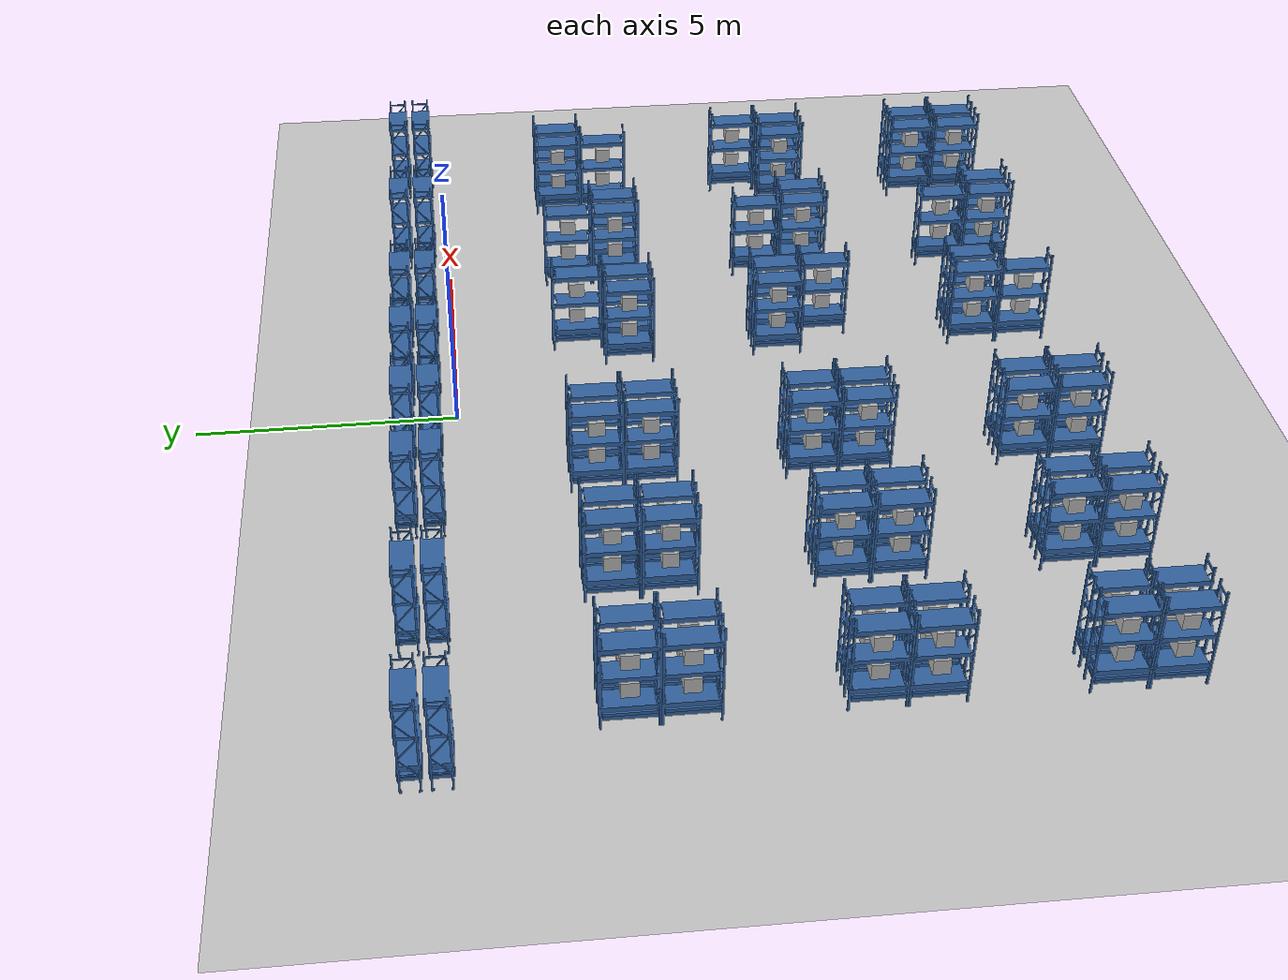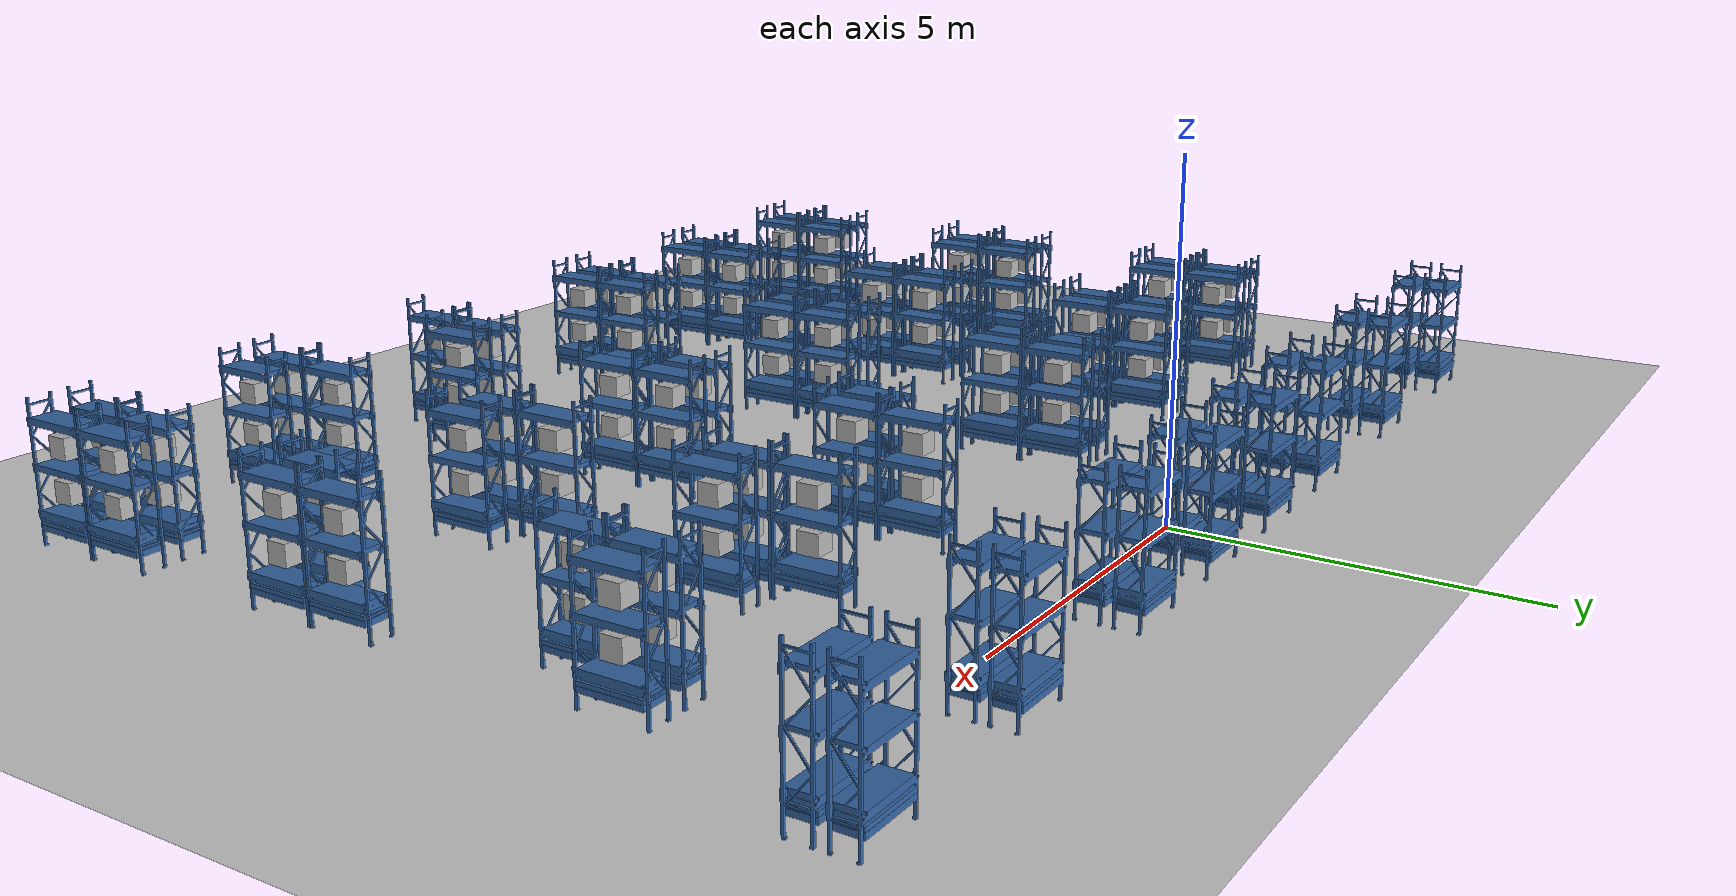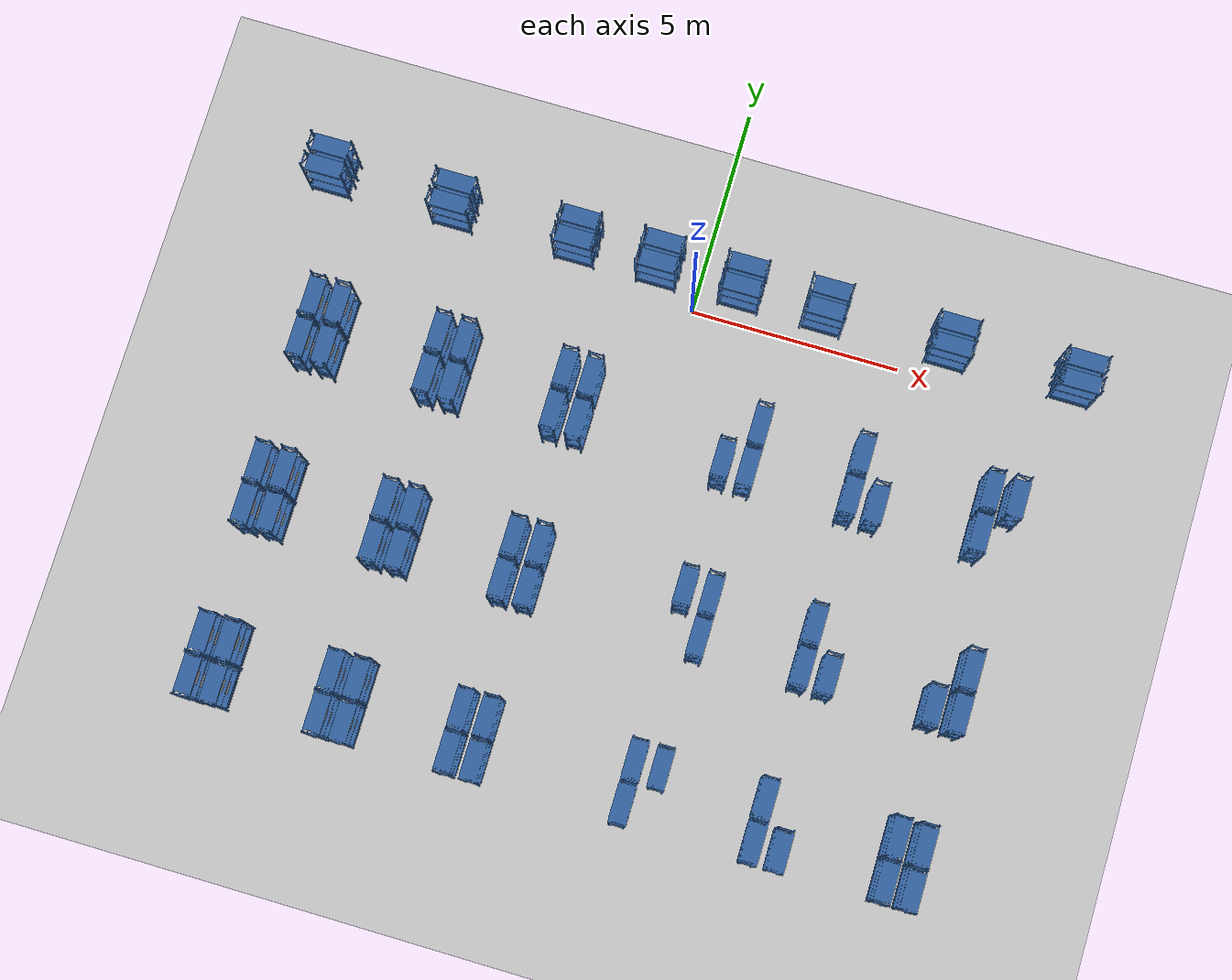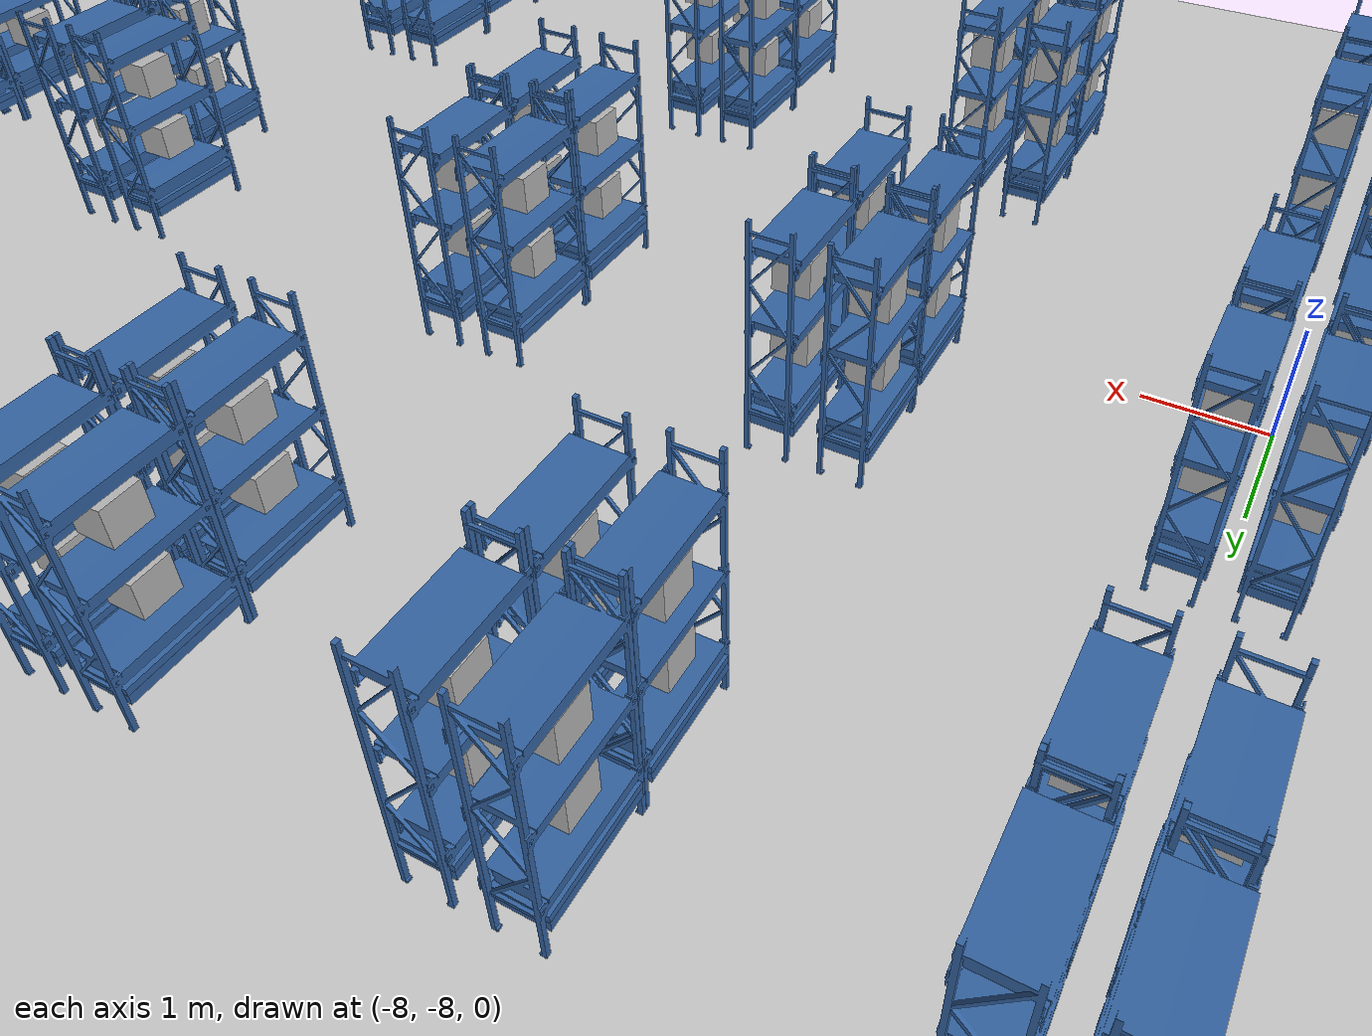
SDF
<?xml version='1.0' encoding='utf-8'?>
<sdf version="1.6">
  <world name="default">
    <gravity>0 0 -9.8</gravity>
    <physics default="0" name="default_physics" type="ode">
      <max_step_size>0.001</max_step_size>
      <real_time_factor>1</real_time_factor>
      <real_time_update_rate>1000</real_time_update_rate>
    </physics>

    <model name="shelf1-1">
      <include>
        <uri>model://shelf</uri>
        <pose> 9 0.5 0 0 0 0</pose>
      </include>
    </model>

    <model name="shelf1-3">
      <include>
        <uri>model://shelf</uri>
        <pose> 6 0.5 0 0 0 0</pose>
      </include>
    </model>

    <model name="shelf1-5">
      <include>
        <uri>model://shelf</uri>
        <pose> 3 0.5 0 0 0 0</pose>
      </include>
    </model>

    <model name="shelf1-7">
      <include>
        <uri>model://shelf</uri>
        <pose> 1 0.5 0 0 0 0</pose>
      </include>
    </model>

    <model name="shelf2-1">
      <include>
        <uri>model://shelf</uri>
        <pose> -9 0.5 0 0 0 0</pose>
      </include>
    </model>
    <model name="shelf2-3">
      <include>
        <uri>model://shelf</uri>
        <pose> -6 0.5 0 0 0 0</pose>
      </include>
    </model>
    <model name="shelf2-5">
      <include>
        <uri>model://shelf</uri>
        <pose> -3 0.5 0 0 0 0</pose>
      </include>
    </model>
    <model name="shelf2-7">
      <include>
        <uri>model://shelf</uri>
        <pose> -1 0.5 0 0 0 0</pose>
      </include>
    </model>

    <model name="shelf1-2">
      <include>
        <uri>model://shelf</uri>
        <pose> 9 1 0 0 0 0</pose>
      </include>
    </model>

    <model name="shelf1-4">
      <include>
        <uri>model://shelf</uri>
        <pose> 6 1 0 0 0 0</pose>
      </include>
    </model>

    <model name="shelf1-6">
      <include>
        <uri>model://shelf</uri>
        <pose> 3 1 0 0 0 0</pose>
      </include>
    </model>

    <model name="shelf1-8">
      <include>
        <uri>model://shelf</uri>
        <pose> 1 1 0 0 0 0</pose>
      </include>
    </model>

    <model name="shelf2-2">

      <include>
        <uri>model://shelf</uri>
        <pose> -9 1 0 0 0 0</pose>
      </include>
    </model>
    <model name="shelf2-4">
      <include>
        <uri>model://shelf</uri>
        <pose> -6 1 0 0 0 0</pose>
      </include>
    </model>
    <model name="shelf2-6">
      <include>
        <uri>model://shelf</uri>
        <pose> -3 1 0 0 0 0</pose>
      </include>
    </model>
    <model name="shelf2-8">
      <include>
        <uri>model://shelf</uri>
        <pose> -1 1 0 0 0 0</pose>
      </include>
    </model>

    <model name="warehouse_ground">
      <include>
        <uri>model://warehouse_ground</uri>
      </include>
      <pose frame="">0.0 -6 -0.000092 0 0 0</pose>
    </model>

    <model name="shelf1">
      <include>
        <uri>model://shelf</uri>
        <pose>-8.3 -2.5 0 0 0 1.57</pose>
      </include>
    </model>
    <model name="box1-1">
      <include>
        <uri>model://ssapang_box</uri>
        <pose>-8.3 -2.5 0.8 0 0 1.57</pose>
      </include>
    </model>
    <model name="box1-2">
      <include>
        <uri>model://ssapang_box</uri>
        <pose>-8.3 -2.5 1.4 0 0 1.57</pose>
      </include>
    </model>
    <model name="shelf2">
      <include>
        <uri>model://shelf</uri>
        <pose>-7.7 -2.5 0 0 0 -1.57</pose>
      </include>
    </model>
    <model name="box2-1">
      <include>
        <uri>model://ssapang_box</uri>
        <pose>-7.7 -2.5 0.8 0 0 1.57</pose>
      </include>
    </model>
    <model name="box2-2">
      <include>
        <uri>model://ssapang_box</uri>
        <pose>-7.7 -2.5 1.4 0 0 1.57</pose>
      </include>
    </model>
    <model name="shelf3">
      <include>
        <uri>model://shelf</uri>
        <pose>-5.3 -2.5 0 0 0 1.57</pose>
      </include>
    </model>
    <model name="box3-1">
      <include>
        <uri>model://ssapang_box</uri>
        <pose>-5.3 -2.5 0.8 0 0 1.57</pose>
      </include>
    </model>
    <model name="box3-2">
      <include>
        <uri>model://ssapang_box</uri>
        <pose>-5.3 -2.5 1.4 0 0 1.57</pose>
      </include>
    </model>
    <model name="shelf4">
      <include>
        <uri>model://shelf</uri>
        <pose>-4.7 -2.5 0 0 0 -1.57</pose>
      </include>
    </model>
    <model name="box4-1">
      <include>
        <uri>model://ssapang_box</uri>
        <pose>-4.7 -2.5 0.8 0 0 1.57</pose>
      </include>
    </model>
    <model name="box4-2">
      <include>
        <uri>model://ssapang_box</uri>
        <pose>-4.7 -2.5 1.4 0 0 1.57</pose>
      </include>
    </model>
    <model name="shelf5">
      <include>
        <uri>model://shelf</uri>
        <pose>-2.3 -2.5 0 0 0 1.57</pose>
      </include>
    </model>
    <model name="box5-1">
      <include>
        <uri>model://ssapang_box</uri>
        <pose>-2.3 -2.5 0.8 0 0 1.57</pose>
      </include>
    </model>
    <model name="box5-2">
      <include>
        <uri>model://ssapang_box</uri>
        <pose>-2.3 -2.5 1.4 0 0 1.57</pose>
      </include>
    </model>
    <model name="shelf6">
      <include>
        <uri>model://shelf</uri>
        <pose>-1.7 -2.5 0 0 0 -1.57</pose>
      </include>
    </model>
    <model name="box6-1">
      <include>
        <uri>model://ssapang_box</uri>
        <pose>-1.7 -2.5 0.8 0 0 1.57</pose>
      </include>
    </model>
    <model name="box6-2">
      <include>
        <uri>model://ssapang_box</uri>
        <pose>-1.7 -2.5 1.4 0 0 1.57</pose>
      </include>
    </model>

    <model name="shelf13">
      <include>
        <uri>model://shelf</uri>
        <pose>-8.3 -3.5 0 0 0 1.57</pose>
      </include>
    </model>
    <model name="box13-1">
      <include>
        <uri>model://ssapang_box</uri>
        <pose>-8.3 -3.5 0.8 0 0 1.57</pose>
      </include>
    </model>
    <model name="box13-2">
      <include>
        <uri>model://ssapang_box</uri>
        <pose>-8.3 -3.5 1.4 0 0 1.57</pose>
      </include>
    </model>
    <model name="shelf14">
      <include>
        <uri>model://shelf</uri>
        <pose>-7.7 -3.5 0 0 0 -1.57</pose>
      </include>
    </model>
    <model name="box14-1">
      <include>
        <uri>model://ssapang_box</uri>
        <pose>-7.7 -3.5 0.8 0 0 1.57</pose>
      </include>
    </model>
    <model name="box14-2">
      <include>
        <uri>model://ssapang_box</uri>
        <pose>-7.7 -3.5 1.4 0 0 1.57</pose>
      </include>
    </model>
    <model name="shelf15">
      <include>
        <uri>model://shelf</uri>
        <pose>-5.3 -3.5 0 0 0 1.57</pose>
      </include>
    </model>
    <model name="box15-1">
      <include>
        <uri>model://ssapang_box</uri>
        <pose>-5.3 -3.5 0.8 0 0 1.57</pose>
      </include>
    </model>
    <model name="box15-2">
      <include>
        <uri>model://ssapang_box</uri>
        <pose>-5.3 -3.5 1.4 0 0 1.57</pose>
      </include>
    </model>
    <model name="shelf16">
      <include>
        <uri>model://shelf</uri>
        <pose>-4.7 -3.5 0 0 0 -1.57</pose>
      </include>
    </model>
    <model name="box16-1">
      <include>
        <uri>model://ssapang_box</uri>
        <pose>-4.7 -3.5 0.8 0 0 1.57</pose>
      </include>
    </model>
    <model name="box16-2">
      <include>
        <uri>model://ssapang_box</uri>
        <pose>-4.7 -3.5 1.4 0 0 1.57</pose>
      </include>
    </model>
    <model name="shelf17">
      <include>
        <uri>model://shelf</uri>
        <pose>-2.3 -3.5 0 0 0 1.57</pose>
      </include>
    </model>
    <model name="box17-1">
      <include>
        <uri>model://ssapang_box</uri>
        <pose>-2.3 -3.5 0.8 0 0 1.57</pose>
      </include>
    </model>
    <model name="box17-2">
      <include>
        <uri>model://ssapang_box</uri>
        <pose>-2.3 -3.5 1.4 0 0 1.57</pose>
      </include>
    </model>
    <model name="shelf18">
      <include>
        <uri>model://shelf</uri>
        <pose>-1.7 -3.5 0 0 0 -1.57</pose>
      </include>
    </model>
    <model name="box18-1">
      <include>
        <uri>model://ssapang_box</uri>
        <pose>-1.7 -3.5 0.8 0 0 1.57</pose>
      </include>
    </model>
    <model name="box18-2">
      <include>
        <uri>model://ssapang_box</uri>
        <pose>-1.7 -3.5 1.4 0 0 1.57</pose>
      </include>
    </model>

    <model name="shelf25">
      <include>
        <uri>model://shelf</uri>
        <pose>-8.3 -6.5 0 0 0 1.57</pose>
      </include>
    </model>
    <model name="box25-1">
      <include>
        <uri>model://ssapang_box</uri>
        <pose>-8.3 -6.5 0.8 0 0 1.57</pose>
      </include>
    </model>
    <model name="box25-2">
      <include>
        <uri>model://ssapang_box</uri>
        <pose>-8.3 -6.5 1.4 0 0 1.57</pose>
      </include>
    </model>
    <model name="shelf26">
      <include>
        <uri>model://shelf</uri>
        <pose>-7.7 -6.5 0 0 0 -1.57</pose>
      </include>
    </model>
    <model name="box26-1">
      <include>
        <uri>model://ssapang_box</uri>
        <pose>-7.7 -6.5 0.8 0 0 1.57</pose>
      </include>
    </model>
    <model name="box26-2">
      <include>
        <uri>model://ssapang_box</uri>
        <pose>-7.7 -6.5 1.4 0 0 1.57</pose>
      </include>
    </model>
    <model name="shelf27">
      <include>
        <uri>model://shelf</uri>
        <pose>-5.3 -6.5 0 0 0 1.57</pose>
      </include>
    </model>
    <model name="box27-1">
      <include>
        <uri>model://ssapang_box</uri>
        <pose>-5.3 -6.5 0.8 0 0 1.57</pose>
      </include>
    </model>
    <model name="box27-2">
      <include>
        <uri>model://ssapang_box</uri>
        <pose>-5.3 -6.5 1.4 0 0 1.57</pose>
      </include>
    </model>
    <model name="shelf28">
      <include>
        <uri>model://shelf</uri>
        <pose>-4.7 -6.5 0 0 0 -1.57</pose>
      </include>
    </model>
    <model name="box28-1">
      <include>
        <uri>model://ssapang_box</uri>
        <pose>-4.7 -6.5 0.8 0 0 1.57</pose>
      </include>
    </model>
    <model name="box28-2">
      <include>
        <uri>model://ssapang_box</uri>
        <pose>-4.7 -6.5 1.4 0 0 1.57</pose>
      </include>
    </model>
    <model name="shelf29">
      <include>
        <uri>model://shelf</uri>
        <pose>-2.3 -6.5 0 0 0 1.57</pose>
      </include>
    </model>
    <model name="box29-1">
      <include>
        <uri>model://ssapang_box</uri>
        <pose>-2.3 -6.5 0.8 0 0 1.57</pose>
      </include>
    </model>
    <model name="box29-2">
      <include>
        <uri>model://ssapang_box</uri>
        <pose>-2.3 -6.5 1.4 0 0 1.57</pose>
      </include>
    </model>
    <model name="shelf30">
      <include>
        <uri>model://shelf</uri>
        <pose>-1.7 -6.5 0 0 0 -1.57</pose>
      </include>
    </model>
    <model name="box30-1">
      <include>
        <uri>model://ssapang_box</uri>
        <pose>-1.7 -6.5 0.8 0 0 1.57</pose>
      </include>
    </model>
    <model name="box30-2">
      <include>
        <uri>model://ssapang_box</uri>
        <pose>-1.7 -6.5 1.4 0 0 1.57</pose>
      </include>
    </model>

    <model name="shelf37">
      <include>
        <uri>model://shelf</uri>
        <pose>-8.3 -7.5 0 0 0 1.57</pose>
      </include>
    </model>
    <model name="box37-1">
      <include>
        <uri>model://ssapang_box</uri>
        <pose>-8.3 -7.5 0.8 0 0 1.57</pose>
      </include>
    </model>
    <model name="box37-2">
      <include>
        <uri>model://ssapang_box</uri>
        <pose>-8.3 -7.5 1.4 0 0 1.57</pose>
      </include>
    </model>
    <model name="shelf38">
      <include>
        <uri>model://shelf</uri>
        <pose>-7.7 -7.5 0 0 0 -1.57</pose>
      </include>
    </model>
    <model name="box38-1">
      <include>
        <uri>model://ssapang_box</uri>
        <pose>-7.7 -7.5 0.8 0 0 1.57</pose>
      </include>
    </model>
    <model name="box38-2">
      <include>
        <uri>model://ssapang_box</uri>
        <pose>-7.7 -7.5 1.4 0 0 1.57</pose>
      </include>
    </model>
    <model name="shelf39">
      <include>
        <uri>model://shelf</uri>
        <pose>-5.3 -7.5 0 0 0 1.57</pose>
      </include>
    </model>
    <model name="box39-1">
      <include>
        <uri>model://ssapang_box</uri>
        <pose>-5.3 -7.5 0.8 0 0 1.57</pose>
      </include>
    </model>
    <model name="box39-2">
      <include>
        <uri>model://ssapang_box</uri>
        <pose>-5.3 -7.5 1.4 0 0 1.57</pose>
      </include>
    </model>
    <model name="shelf40">
      <include>
        <uri>model://shelf</uri>
        <pose>-4.7 -7.5 0 0 0 -1.57</pose>
      </include>
    </model>
    <model name="box40-1">
      <include>
        <uri>model://ssapang_box</uri>
        <pose>-4.7 -7.5 0.8 0 0 1.57</pose>
      </include>
    </model>
    <model name="box40-2">
      <include>
        <uri>model://ssapang_box</uri>
        <pose>-4.7 -7.5 1.4 0 0 1.57</pose>
      </include>
    </model>
    <model name="shelf41">
      <include>
        <uri>model://shelf</uri>
        <pose>-2.3 -7.5 0 0 0 1.57</pose>
      </include>
    </model>
    <model name="box41-1">
      <include>
        <uri>model://ssapang_box</uri>
        <pose>-2.3 -7.5 0.8 0 0 1.57</pose>
      </include>
    </model>
    <model name="box41-2">
      <include>
        <uri>model://ssapang_box</uri>
        <pose>-2.3 -7.5 1.4 0 0 1.57</pose>
      </include>
    </model>
    <model name="shelf42">
      <include>
        <uri>model://shelf</uri>
        <pose>-1.7 -7.5 0 0 0 -1.57</pose>
      </include>
    </model>
    <model name="box42-1">
      <include>
        <uri>model://ssapang_box</uri>
        <pose>-1.7 -7.5 0.8 0 0 1.57</pose>
      </include>
    </model>
    <model name="box42-2">
      <include>
        <uri>model://ssapang_box</uri>
        <pose>-1.7 -7.5 1.4 0 0 1.57</pose>
      </include>
    </model>

    <model name="shelf49">
      <include>
        <uri>model://shelf</uri>
        <pose>-8.3 -10.5 0 0 0 1.57</pose>
      </include>
    </model>
    <model name="box49-1">
      <include>
        <uri>model://ssapang_box</uri>
        <pose>-8.3 -10.5 0.8 0 0 1.57</pose>
      </include>
    </model>
    <model name="box49-2">
      <include>
        <uri>model://ssapang_box</uri>
        <pose>-8.3 -10.5 1.4 0 0 1.57</pose>
      </include>
    </model>
    <model name="shelf50">
      <include>
        <uri>model://shelf</uri>
        <pose>-7.7 -10.5 0 0 0 -1.57</pose>
      </include>
    </model>
    <model name="box50-1">
      <include>
        <uri>model://ssapang_box</uri>
        <pose>-7.7 -10.5 0.8 0 0 1.57</pose>
      </include>
    </model>
    <model name="box50-2">
      <include>
        <uri>model://ssapang_box</uri>
        <pose>-7.7 -10.5 1.4 0 0 1.57</pose>
      </include>
    </model>
    <model name="shelf51">
      <include>
        <uri>model://shelf</uri>
        <pose>-5.3 -10.5 0 0 0 1.57</pose>
      </include>
    </model>
    <model name="box51-1">
      <include>
        <uri>model://ssapang_box</uri>
        <pose>-5.3 -10.5 0.8 0 0 1.57</pose>
      </include>
    </model>
    <model name="box51-2">
      <include>
        <uri>model://ssapang_box</uri>
        <pose>-5.3 -10.5 1.4 0 0 1.57</pose>
      </include>
    </model>
    <model name="shelf52">
      <include>
        <uri>model://shelf</uri>
        <pose>-4.7 -10.5 0 0 0 -1.57</pose>
      </include>
    </model>
    <model name="box52-1">
      <include>
        <uri>model://ssapang_box</uri>
        <pose>-4.7 -10.5 0.8 0 0 1.57</pose>
      </include>
    </model>
    <model name="box52-2">
      <include>
        <uri>model://ssapang_box</uri>
        <pose>-4.7 -10.5 1.4 0 0 1.57</pose>
      </include>
    </model>
    <model name="shelf53">
      <include>
        <uri>model://shelf</uri>
        <pose>-2.3 -10.5 0 0 0 1.57</pose>
      </include>
    </model>
    <model name="box53-1">
      <include>
        <uri>model://ssapang_box</uri>
        <pose>-2.3 -10.5 0.8 0 0 1.57</pose>
      </include>
    </model>
    <model name="box53-2">
      <include>
        <uri>model://ssapang_box</uri>
        <pose>-2.3 -10.5 1.4 0 0 1.57</pose>
      </include>
    </model>
    <model name="shelf54">
      <include>
        <uri>model://shelf</uri>
        <pose>-1.7 -10.5 0 0 0 -1.57</pose>
      </include>
    </model>
    <model name="box54-1">
      <include>
        <uri>model://ssapang_box</uri>
        <pose>-1.7 -10.5 0.8 0 0 1.57</pose>
      </include>
    </model>
    <model name="box54-2">
      <include>
        <uri>model://ssapang_box</uri>
        <pose>-1.7 -10.5 1.4 0 0 1.57</pose>
      </include>
    </model>

    <model name="shelf61">
      <include>
        <uri>model://shelf</uri>
        <pose>-8.3 -11.5 0 0 0 1.57</pose>
      </include>
    </model>
    <model name="box61-1">
      <include>
        <uri>model://ssapang_box</uri>
        <pose>-8.3 -11.5 0.8 0 0 1.57</pose>
      </include>
    </model>
    <model name="box61-2">
      <include>
        <uri>model://ssapang_box</uri>
        <pose>-8.3 -11.5 1.4 0 0 1.57</pose>
      </include>
    </model>
    <model name="shelf62">
      <include>
        <uri>model://shelf</uri>
        <pose>-7.7 -11.5 0 0 0 -1.57</pose>
      </include>
    </model>
    <model name="box62-1">
      <include>
        <uri>model://ssapang_box</uri>
        <pose>-7.7 -11.5 0.8 0 0 1.57</pose>
      </include>
    </model>
    <model name="box62-2">
      <include>
        <uri>model://ssapang_box</uri>
        <pose>-7.7 -11.5 1.4 0 0 1.57</pose>
      </include>
    </model>
    <model name="shelf63">
      <include>
        <uri>model://shelf</uri>
        <pose>-5.3 -11.5 0 0 0 1.57</pose>
      </include>
    </model>
    <model name="box63-1">
      <include>
        <uri>model://ssapang_box</uri>
        <pose>-5.3 -11.5 0.8 0 0 1.57</pose>
      </include>
    </model>
    <model name="box63-2">
      <include>
        <uri>model://ssapang_box</uri>
        <pose>-5.3 -11.5 1.4 0 0 1.57</pose>
      </include>
    </model>
    <model name="shelf64">
      <include>
        <uri>model://shelf</uri>
        <pose>-4.7 -11.5 0 0 0 -1.57</pose>
      </include>
    </model>
    <model name="box64-1">
      <include>
        <uri>model://ssapang_box</uri>
        <pose>-4.7 -11.5 0.8 0 0 1.57</pose>
      </include>
    </model>
    <model name="box64-2">
      <include>
        <uri>model://ssapang_box</uri>
        <pose>-4.7 -11.5 1.4 0 0 1.57</pose>
      </include>
    </model>
    <model name="shelf65">
      <include>
        <uri>model://shelf</uri>
        <pose>-2.3 -11.5 0 0 0 1.57</pose>
      </include>
    </model>
    <model name="box65-1">
      <include>
        <uri>model://ssapang_box</uri>
        <pose>-2.3 -11.5 0.8 0 0 1.57</pose>
      </include>
    </model>
    <model name="box65-2">
      <include>
        <uri>model://ssapang_box</uri>
        <pose>-2.3 -11.5 1.4 0 0 1.57</pose>
      </include>
    </model>
    <model name="shelf66">
      <include>
        <uri>model://shelf</uri>
        <pose>-1.7 -11.5 0 0 0 -1.57</pose>
      </include>
    </model>
    <model name="box66-1">
      <include>
        <uri>model://ssapang_box</uri>
        <pose>-1.7 -11.5 0.8 0 0 1.57</pose>
      </include>
    </model>
    <model name="box66-2">
      <include>
        <uri>model://ssapang_box</uri>
        <pose>-1.7 -11.5 1.4 0 0 1.57</pose>
      </include>
    </model>
<model name="shelf8">
<include>
<uri>model://shelf</uri>
<pose>2.3 -2.5 0 0 0 -1.57</pose>
</include>
</model>
<model name="box8-1">
<include>
<uri>model://ssapang_box</uri>
<pose>2.3 -2.5 0.8 0 0 1.57</pose>
</include>
</model>
<model name="box8-2">
<include>
<uri>model://ssapang_box</uri>
<pose>2.3 -2.5 1.4 0 0 1.57</pose>
</include>
</model>
<model name="shelf9">
<include>
<uri>model://shelf</uri>
<pose>4.7 -2.5 0 0 0 1.57</pose>
</include>
</model>
<model name="box9-1">
<include>
<uri>model://ssapang_box</uri>
<pose>4.7 -2.5 0.8 0 0 1.57</pose>
</include>
</model>
<model name="box9-2">
<include>
<uri>model://ssapang_box</uri>
<pose>4.7 -2.5 1.4 0 0 1.57</pose>
</include>
</model>
<model name="shelf11">
<include>
<uri>model://shelf</uri>
<pose>7.7 -2.5 0 0 0 1.57</pose>
</include>
</model>
<model name="box11-1">
<include>
<uri>model://ssapang_box</uri>
<pose>7.7 -2.5 0.8 0 0 1.57</pose>
</include>
</model>
<model name="box11-2">
<include>
<uri>model://ssapang_box</uri>
<pose>7.7 -2.5 1.4 0 0 1.57</pose>
</include>
</model>
<model name="shelf12">
<include>
<uri>model://shelf</uri>
<pose>8.3 -2.5 0 0 0 -1.57</pose>
</include>
</model>
<model name="box12-1">
<include>
<uri>model://ssapang_box</uri>
<pose>8.3 -2.5 0.8 0 0 1.57</pose>
</include>
</model>
<model name="box12-2">
<include>
<uri>model://ssapang_box</uri>
<pose>8.3 -2.5 1.4 0 0 1.57</pose>
</include>
</model>
<model name="shelf19">
<include>
<uri>model://shelf</uri>
<pose>1.7 -3.5 0 0 0 1.57</pose>
</include>
</model>
<model name="box19-1">
<include>
<uri>model://ssapang_box</uri>
<pose>1.7 -3.5 0.8 0 0 1.57</pose>
</include>
</model>
<model name="box19-2">
<include>
<uri>model://ssapang_box</uri>
<pose>1.7 -3.5 1.4 0 0 1.57</pose>
</include>
</model>
<model name="shelf20">
<include>
<uri>model://shelf</uri>
<pose>2.3 -3.5 0 0 0 -1.57</pose>
</include>
</model>
<model name="box20-1">
<include>
<uri>model://ssapang_box</uri>
<pose>2.3 -3.5 0.8 0 0 1.57</pose>
</include>
</model>
<model name="box20-2">
<include>
<uri>model://ssapang_box</uri>
<pose>2.3 -3.5 1.4 0 0 1.57</pose>
</include>
</model>
<model name="shelf21">
<include>
<uri>model://shelf</uri>
<pose>4.7 -3.5 0 0 0 1.57</pose>
</include>
</model>
<model name="box21-1">
<include>
<uri>model://ssapang_box</uri>
<pose>4.7 -3.5 0.8 0 0 1.57</pose>
</include>
</model>
<model name="box21-2">
<include>
<uri>model://ssapang_box</uri>
<pose>4.7 -3.5 1.4 0 0 1.57</pose>
</include>
</model>
<model name="shelf22">
<include>
<uri>model://shelf</uri>
<pose>5.3 -3.5 0 0 0 -1.57</pose>
</include>
</model>
<model name="box22-1">
<include>
<uri>model://ssapang_box</uri>
<pose>5.3 -3.5 0.8 0 0 1.57</pose>
</include>
</model>
<model name="box22-2">
<include>
<uri>model://ssapang_box</uri>
<pose>5.3 -3.5 1.4 0 0 1.57</pose>
</include>
</model>
<model name="shelf23">
<include>
<uri>model://shelf</uri>
<pose>7.7 -3.5 0 0 0 1.57</pose>
</include>
</model>
<model name="box23-1">
<include>
<uri>model://ssapang_box</uri>
<pose>7.7 -3.5 0.8 0 0 1.57</pose>
</include>
</model>
<model name="box23-2">
<include>
<uri>model://ssapang_box</uri>
<pose>7.7 -3.5 1.4 0 0 1.57</pose>
</include>
</model>
<model name="shelf31">
<include>
<uri>model://shelf</uri>
<pose>1.7 -6.5 0 0 0 1.57</pose>
</include>
</model>
<model name="box31-1">
<include>
<uri>model://ssapang_box</uri>
<pose>1.7 -6.5 0.8 0 0 1.57</pose>
</include>
</model>
<model name="box31-2">
<include>
<uri>model://ssapang_box</uri>
<pose>1.7 -6.5 1.4 0 0 1.57</pose>
</include>
</model>
<model name="shelf32">
<include>
<uri>model://shelf</uri>
<pose>2.3 -6.5 0 0 0 -1.57</pose>
</include>
</model>
<model name="box32-1">
<include>
<uri>model://ssapang_box</uri>
<pose>2.3 -6.5 0.8 0 0 1.57</pose>
</include>
</model>
<model name="box32-2">
<include>
<uri>model://ssapang_box</uri>
<pose>2.3 -6.5 1.4 0 0 1.57</pose>
</include>
</model>
<model name="shelf33">
<include>
<uri>model://shelf</uri>
<pose>4.7 -6.5 0 0 0 1.57</pose>
</include>
</model>
<model name="box33-1">
<include>
<uri>model://ssapang_box</uri>
<pose>4.7 -6.5 0.8 0 0 1.57</pose>
</include>
</model>
<model name="box33-2">
<include>
<uri>model://ssapang_box</uri>
<pose>4.7 -6.5 1.4 0 0 1.57</pose>
</include>
</model>
<model name="shelf36">
<include>
<uri>model://shelf</uri>
<pose>8.3 -6.5 0 0 0 -1.57</pose>
</include>
</model>
<model name="box36-1">
<include>
<uri>model://ssapang_box</uri>
<pose>8.3 -6.5 0.8 0 0 1.57</pose>
</include>
</model>
<model name="box36-2">
<include>
<uri>model://ssapang_box</uri>
<pose>8.3 -6.5 1.4 0 0 1.57</pose>
</include>
</model>
<model name="shelf44">
<include>
<uri>model://shelf</uri>
<pose>2.3 -7.5 0 0 0 -1.57</pose>
</include>
</model>
<model name="box44-1">
<include>
<uri>model://ssapang_box</uri>
<pose>2.3 -7.5 0.8 0 0 1.57</pose>
</include>
</model>
<model name="box44-2">
<include>
<uri>model://ssapang_box</uri>
<pose>2.3 -7.5 1.4 0 0 1.57</pose>
</include>
</model>
<model name="shelf45">
<include>
<uri>model://shelf</uri>
<pose>4.7 -7.5 0 0 0 1.57</pose>
</include>
</model>
<model name="box45-1">
<include>
<uri>model://ssapang_box</uri>
<pose>4.7 -7.5 0.8 0 0 1.57</pose>
</include>
</model>
<model name="box45-2">
<include>
<uri>model://ssapang_box</uri>
<pose>4.7 -7.5 1.4 0 0 1.57</pose>
</include>
</model>
<model name="shelf46">
<include>
<uri>model://shelf</uri>
<pose>5.3 -7.5 0 0 0 -1.57</pose>
</include>
</model>
<model name="box46-1">
<include>
<uri>model://ssapang_box</uri>
<pose>5.3 -7.5 0.8 0 0 1.57</pose>
</include>
</model>
<model name="box46-2">
<include>
<uri>model://ssapang_box</uri>
<pose>5.3 -7.5 1.4 0 0 1.57</pose>
</include>
</model>
<model name="shelf47">
<include>
<uri>model://shelf</uri>
<pose>7.7 -7.5 0 0 0 1.57</pose>
</include>
</model>
<model name="box47-1">
<include>
<uri>model://ssapang_box</uri>
<pose>7.7 -7.5 0.8 0 0 1.57</pose>
</include>
</model>
<model name="box47-2">
<include>
<uri>model://ssapang_box</uri>
<pose>7.7 -7.5 1.4 0 0 1.57</pose>
</include>
</model>
<model name="shelf48">
<include>
<uri>model://shelf</uri>
<pose>8.3 -7.5 0 0 0 -1.57</pose>
</include>
</model>
<model name="box48-1">
<include>
<uri>model://ssapang_box</uri>
<pose>8.3 -7.5 0.8 0 0 1.57</pose>
</include>
</model>
<model name="box48-2">
<include>
<uri>model://ssapang_box</uri>
<pose>8.3 -7.5 1.4 0 0 1.57</pose>
</include>
</model>
<model name="shelf55">
<include>
<uri>model://shelf</uri>
<pose>1.7 -10.5 0 0 0 1.57</pose>
</include>
</model>
<model name="box55-1">
<include>
<uri>model://ssapang_box</uri>
<pose>1.7 -10.5 0.8 0 0 1.57</pose>
</include>
</model>
<model name="box55-2">
<include>
<uri>model://ssapang_box</uri>
<pose>1.7 -10.5 1.4 0 0 1.57</pose>
</include>
</model>
<model name="shelf56">
<include>
<uri>model://shelf</uri>
<pose>2.3 -10.5 0 0 0 -1.57</pose>
</include>
</model>
<model name="box56-1">
<include>
<uri>model://ssapang_box</uri>
<pose>2.3 -10.5 0.8 0 0 1.57</pose>
</include>
</model>
<model name="box56-2">
<include>
<uri>model://ssapang_box</uri>
<pose>2.3 -10.5 1.4 0 0 1.57</pose>
</include>
</model>
<model name="shelf57">
<include>
<uri>model://shelf</uri>
<pose>4.7 -10.5 0 0 0 1.57</pose>
</include>
</model>
<model name="box57-1">
<include>
<uri>model://ssapang_box</uri>
<pose>4.7 -10.5 0.8 0 0 1.57</pose>
</include>
</model>
<model name="box57-2">
<include>
<uri>model://ssapang_box</uri>
<pose>4.7 -10.5 1.4 0 0 1.57</pose>
</include>
</model>
<model name="shelf59">
<include>
<uri>model://shelf</uri>
<pose>7.7 -10.5 0 0 0 1.57</pose>
</include>
</model>
<model name="box59-1">
<include>
<uri>model://ssapang_box</uri>
<pose>7.7 -10.5 0.8 0 0 1.57</pose>
</include>
</model>
<model name="box59-2">
<include>
<uri>model://ssapang_box</uri>
<pose>7.7 -10.5 1.4 0 0 1.57</pose>
</include>
</model>
<model name="shelf60">
<include>
<uri>model://shelf</uri>
<pose>8.3 -10.5 0 0 0 -1.57</pose>
</include>
</model>
<model name="box60-1">
<include>
<uri>model://ssapang_box</uri>
<pose>8.3 -10.5 0.8 0 0 1.57</pose>
</include>
</model>
<model name="box60-2">
<include>
<uri>model://ssapang_box</uri>
<pose>8.3 -10.5 1.4 0 0 1.57</pose>
</include>
</model>
<model name="shelf67">
<include>
<uri>model://shelf</uri>
<pose>1.7 -11.5 0 0 0 1.57</pose>
</include>
</model>
<model name="box67-1">
<include>
<uri>model://ssapang_box</uri>
<pose>1.7 -11.5 0.8 0 0 1.57</pose>
</include>
</model>
<model name="box67-2">
<include>
<uri>model://ssapang_box</uri>
<pose>1.7 -11.5 1.4 0 0 1.57</pose>
</include>
</model>
<model name="shelf69">
<include>
<uri>model://shelf</uri>
<pose>4.7 -11.5 0 0 0 1.57</pose>
</include>
</model>
<model name="box69-1">
<include>
<uri>model://ssapang_box</uri>
<pose>4.7 -11.5 0.8 0 0 1.57</pose>
</include>
</model>
<model name="box69-2">
<include>
<uri>model://ssapang_box</uri>
<pose>4.7 -11.5 1.4 0 0 1.57</pose>
</include>
</model>
<model name="shelf70">
<include>
<uri>model://shelf</uri>
<pose>5.3 -11.5 0 0 0 -1.57</pose>
</include>
</model>
<model name="box70-1">
<include>
<uri>model://ssapang_box</uri>
<pose>5.3 -11.5 0.8 0 0 1.57</pose>
</include>
</model>
<model name="box70-2">
<include>
<uri>model://ssapang_box</uri>
<pose>5.3 -11.5 1.4 0 0 1.57</pose>
</include>
</model>
<model name="shelf71">
<include>
<uri>model://shelf</uri>
<pose>7.7 -11.5 0 0 0 1.57</pose>
</include>
</model>
<model name="box71-1">
<include>
<uri>model://ssapang_box</uri>
<pose>7.7 -11.5 0.8 0 0 1.57</pose>
</include>
</model>
<model name="box71-2">
<include>
<uri>model://ssapang_box</uri>
<pose>7.7 -11.5 1.4 0 0 1.57</pose>
</include>
</model>
<model name="shelf72">
<include>
<uri>model://shelf</uri>
<pose>8.3 -11.5 0 0 0 -1.57</pose>
</include>
</model>
<model name="box72-1">
<include>
<uri>model://ssapang_box</uri>
<pose>8.3 -11.5 0.8 0 0 1.57</pose>
</include>
</model>
<model name="box72-2">
<include>
<uri>model://ssapang_box</uri>
<pose>8.3 -11.5 1.4 0 0 1.57</pose>
</include>
</model>

    <light name="Warehouse_CeilingLight_003" type="point">
      <pose frame="">0 0 9 0 0 0</pose>
      <diffuse>1 1 1 1</diffuse>
      <specular>0.2 0.2 0.2 1</specular>
      <attenuation>
        <range>80</range>
        <constant>0.3</constant>
        <linear>0.01</linear>
        <quadratic>0.001</quadratic>
      </attenuation>
      <cast_shadows>0</cast_shadows>
      <direction>0.1 0.1 -1</direction>
    </light>

    <gui fullscreen='0'>
      <camera name='user_camera'>
        <pose frame=''>-4.70385 10.895 16.2659 -0 0.921795 -1.12701</pose>
        <view_controller>orbit</view_controller>
        <projection_type>perspective</projection_type>
      </camera>
    </gui>

  </world>
</sdf>

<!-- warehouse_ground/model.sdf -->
<sdf version="1.6">
   <model name="warehouse_ground">
      <static>true</static>
      <link name="link">
         <collision name="collision">
            <geometry>
               <plane>
                  <normal>0 0 1</normal>
                  <size>25 20</size>
               </plane>
            </geometry>
            <surface>
               <friction>
                  <ode>
                     <mu>100</mu>
                     <mu2>50</mu2>
                  </ode>
               </friction>
            </surface>
         </collision>
         <visual name="visual">
            <cast_shadows>false</cast_shadows>
            <geometry>
               <plane>
                  <normal>0 0 1</normal>
                  <size>25 20</size>
               </plane>
            </geometry>
            <material>
               <script>
                  <uri>model://warehouse_ground/materials/scripts</uri>
                  <uri>model://warehouse_ground/materials/textures/</uri>
                  <name>WareHouseGround/Image</name>
               </script>
            </material>
         </visual>
      </link>
   </model>
</sdf>

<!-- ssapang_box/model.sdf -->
<sdf version='1.7'>
  <model name='ssapang_box'>
    <link name='box::link_0'>
      <inertial>
        <mass>0.0001</mass>
        <inertia>
          <ixx>0.00000771</ixx>
          <ixy>0</ixy>
          <ixz>0</ixz>
          <iyy>0.00000771</iyy>
          <iyz>0</iyz>
          <izz>0.00036667</izz>
        </inertia>
        <pose>0 0 0 0 -0 0</pose>
      </inertial>
      <pose>0 0 0 0 0 0</pose>
      <gravity>1</gravity>
      <self_collide>0</self_collide>
      <kinematic>0</kinematic>
      <enable_wind>0</enable_wind>

      <visual name='visual'>
        <pose>0 0 0 0 -0 0</pose>
        <geometry>
          <box>
            <size>0.3 0.3 0.3</size>
          </box>
        </geometry>

        <material>
          <script>
            <uri>model://ssapang_box/materials/scripts</uri>
            <uri>model://ssapang_box/materials/textures</uri>
            <name>box/Diffuse</name>
          </script>
        </material>

        <transparency>0</transparency>
        <cast_shadows>1</cast_shadows>
      </visual>

      <collision name='collision'>
        <laser_retro>0</laser_retro>
        <max_contacts>10</max_contacts>
        <pose>0 0 0 0 -0 0</pose>
        <geometry>
          <box>
            <size>0.3 0.3 0.3</size>
          </box>
        </geometry>
        <surface>
          <friction>
            <ode>
              <mu>0.1</mu>
              <mu2>0.1</mu2>
              <fdir1>0 0 0</fdir1>
              <slip1>0</slip1>
              <slip2>0</slip2>
            </ode>
            <torsional>
              <coefficient>1</coefficient>
              <patch_radius>0</patch_radius>
              <surface_radius>0</surface_radius>
              <use_patch_radius>1</use_patch_radius>
              <ode>
                <slip>0</slip>
              </ode>
            </torsional>
          </friction>
          <bounce>
            <restitution_coefficient>0</restitution_coefficient>
            <threshold>1e+06</threshold>
          </bounce>
          <contact>
            <collide_without_contact>0</collide_without_contact>
            <collide_without_contact_bitmask>1</collide_without_contact_bitmask>
            <collide_bitmask>1</collide_bitmask>
            <ode>
              <soft_cfm>0</soft_cfm>
              <soft_erp>0.2</soft_erp>
              <kp>1e+13</kp>
              <kd>1</kd>
              <max_vel>0.01</max_vel>
              <min_depth>0</min_depth>
            </ode>
            <bullet>
              <split_impulse>1</split_impulse>
              <split_impulse_penetration_threshold>-0.01</split_impulse_penetration_threshold>
              <soft_cfm>0</soft_cfm>
              <soft_erp>0.2</soft_erp>
              <kp>1e+13</kp>
              <kd>1</kd>
            </bullet>
          </contact>
        </surface>
      </collision>
    </link>
    <static>0</static>
    <allow_auto_disable>1</allow_auto_disable>
  </model>
</sdf>
